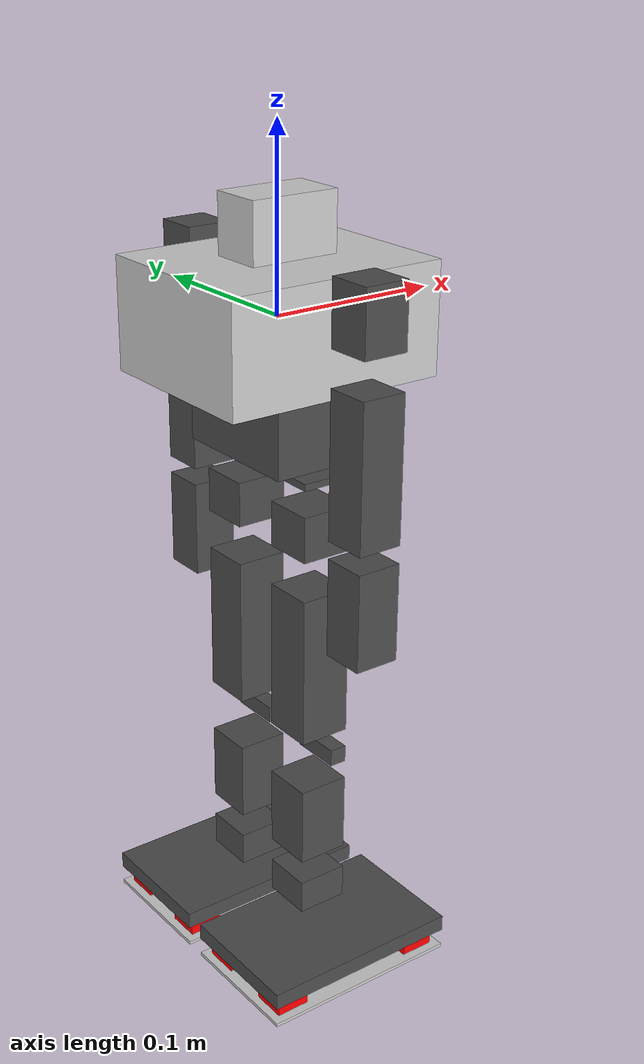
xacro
<?xml version="1.0"?>
<robot name="khr-3hv" xmlns:xacro="http://ros.org/wiki/xacro">

	<xacro:include filename="$(find sotuken2017)/urdf/khr_body/khr-body normal.xacro"/>
	<xacro:include filename="$(find sotuken2017)/urdf/khr_head/khr-head normal.xacro"/>
	<xacro:include filename="$(find sotuken2017)/urdf/khr_arm/khr-arm normal.xacro"/>
	<xacro:include filename="$(find sotuken2017)/urdf/khr_leg/khr-leg normal.xacro"/>

	<!-- head -->
	<xacro:make_head parent="base_link"/>

	<!-- base link (body)-->
	<xacro:make_body/>

	<!-- left arm -->
	<xacro:make_arm parent="base_link" LRarm="L" ref="1" arm_bool="true"/>

	<!-- right arm -->
	<xacro:make_arm parent="base_link" LRarm="R" ref="-1" arm_bool="false"/>

	<!-- left leg -->
	<xacro:make_leg parent="body_2" LRleg="L" ref="1" leg_bool="true"/>

	<!-- right leg -->
	<xacro:make_leg parent="body_2" LRleg="R" ref="-1" leg_bool="false"/>

</robot>

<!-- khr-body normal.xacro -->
<robot xmlns:xacro="http://ros.org/wiki/xacro">

<xacro:include filename="$(find sotuken2017)/urdf/common.xacro"/>
<xacro:include filename="$(find sotuken2017)/urdf/urdf_gazebo.xacro"/>

  <property name="ef" value="1.37293"/>
  <property name="vel" value="7.5"/>

  <property name="body_x" value="0.129"/>
  <property name="body_y" value="0.105"/>
  <property name="body_z" value="0.062"/>
  <property name="body_mass" value="0.3"/>

  <property name="body_2_x" value="0.057"/>
  <property name="body_2_y" value="0.08"/>
  <property name="body_2_z" value="0.041"/>
  <property name="body_2_mass" value="0.2"/>

  <xacro:macro name="default_origin">
	  <origin xyz="0 0 0" rpy="0 0 0"/>
  </xacro:macro>

  <xacro:macro name="make_body">
    <link name="base_link">
      <visual>
		<xacro:default_origin/>
        <geometry>
          <box size="${body_x} ${body_y} ${body_z}"/>
        </geometry>
        <xacro:gray/>
      </visual>

      <collision>
		<xacro:default_origin/>
        <geometry>
          <box size="${body_x} ${body_y} ${body_z}"/>
        </geometry>
      </collision>

      <inertial>
		<xacro:default_origin/>
        <xacro:box_inertial m="${body_mass}" d="${body_x}" w="${body_y}" h="${body_z}"/>
      </inertial>

    </link>

    <joint name="base_link_to_body_2" type="revolute">
      <parent link="base_link"/>
      <child link="body_2"/>
      <origin xyz="0 0 -${body_z / 2 + body_2_z / 2 + 0.001}" rpy="0 0 0"/>
      <axis xyz="0 0 1"/>
	  <dynamics damping="0.5"/>
      <limit lower="-${M_PI / 4}" upper="${M_PI / 4}" effort="${ef}" velocity="${vel}"/>
    </joint>

    <link name="body_2">
      <visual>
		<xacro:default_origin/>
        <geometry>
          <box size="${body_2_x} ${body_2_y} ${body_2_z}"/>
        </geometry>
        <xacro:black/>
      </visual>

	  <collision>
		<xacro:default_origin/>
        <geometry>
          <box size="${body_2_x} ${body_2_y} ${body_2_z}"/>
        </geometry>
      </collision>

      <inertial>
		<xacro:default_origin/>
        <xacro:box_inertial m="${body_2_mass}" d="${body_2_x}" w="${body_2_y}" h="${body_2_z}"/>
      </inertial>
    </link>

	<xacro:gazebo_link_gray ref="base_link"/>
	<xacro:gazebo_link_black ref="body_2"/>
  </xacro:macro>

</robot>

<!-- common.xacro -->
<robot xmlns:xacro="http://ros.org/wiki/xacro">
  <property name="M_PI" value="3.14159274"/>

  <!-- common color -->
  <xacro:macro name="set_color">
	  <material name="default">
   		<color rgba="0.8 0.8 0.8 1.0"/>
  	  </material>
  </xacro:macro>

  <xacro:macro name="red">
	  <material name="red">
   		<color rgba="1.0 0.0 0.0 1.0"/>
  	  </material>
  </xacro:macro>

  <xacro:macro name="black">
	  <material name="black">
   		<color rgba="0.3 0.3 0.3 1.0"/>
  	  </material>
  </xacro:macro>

  <xacro:macro name="gray">
	  <material name="gray">
   		<color rgba="0.8 0.8 0.8 1.0"/>
  	  </material>
  </xacro:macro>

  <!-- calculate box inertia -->
  <xacro:macro name="box_inertial" params="m d w h">
    <mass value="${m}"/>
    <inertia ixx="${(m * (h * h + d * d)) / 12}"   ixy="0" ixz="0"
             iyy="${(m * (w * w + d * d)) / 12}"   iyz="0"
             izz="${(m * (w * w + h * h)) / 12}" />
  </xacro:macro>

</robot>

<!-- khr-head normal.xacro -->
<robot xmlns:xacro="http://ros.org/wiki/xacro">

<xacro:include filename="$(find sotuken2017)/urdf/common.xacro"/>
<xacro:include filename="$(find sotuken2017)/urdf/urdf_gazebo.xacro"/>
<xacro:include filename="$(find sotuken2017)/urdf/khr_body/khr-body normal.xacro"/>

  <property name="ef" value="1.37293"/>
  <property name="vel" value="7.5"/>

  <property name="head_x" value="0.052"/>
  <property name="head_y" value="0.031"/>
  <property name="head_z" value="0.033"/>
  <property name="head_mass" value="0.1"/>

   <xacro:macro name="make_head" params="parent">
     <joint name="${parent}_to_head" type="revolute">
       <parent link="${parent}"/>
       <child link="head"/>
       <origin xyz="0 0 ${body_z / 2 + 0.0005}" rpy="0 0 0"/>
       <axis xyz="0 0 1"/>
	   <dynamics damping="0.5"/>
       <limit lower="-${M_PI / 2}" upper="${M_PI / 2}" effort="${ef}" velocity="${vel}"/>
     </joint>

     <link name="head">
		<visual>
        	<origin xyz="0 0 ${head_z /2 + 0.0005}" rpy="0 0 0"/>
       		<geometry>
        		<box size="${head_x} ${head_y} ${head_z}"/>
       		</geometry>
       		<xacro:gray/>
       	</visual>

       	<collision>
			<origin xyz="0 0 ${head_z /2 + 0.0005}" rpy="0 0 0"/>
			<geometry>
				<box size="${head_x} ${head_y} ${head_z}"/>
			</geometry>
       	</collision>

	   	<inertial>
		    <origin xyz="0 0 ${head_z /2 + 0.0005}" rpy="0 0 0"/>
		    <xacro:box_inertial m="${head_mass}" d="${head_x}" w="${head_y}" h="${head_z}"/>
	   	</inertial>
     </link>

	 <xacro:gazebo_link_gray ref="head"/>
   </xacro:macro>

</robot>

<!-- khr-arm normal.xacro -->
<robot xmlns:xacro="http://ros.org/wiki/xacro">

<xacro:include filename="$(find sotuken2017)/urdf/common.xacro"/>
<xacro:include filename="$(find sotuken2017)/urdf/urdf_gazebo.xacro"/>

  <property name="ef" value="1.37293"/>
  <property name="vel" value="7.5"/>

  <property name="arm_xy" value="0.026"/>

  <property name="shoulder_z" value="0.036"/>
  <property name="shoulder_mass" value="0.0625"/>

  <property name="upper_arm_z" value="0.082"/>
  <property name="upper_arm_mass" value="0.0625"/>

  <property name="lower_arm_z" value="0.056"/>
  <property name="lower_arm_mass" value="0.025"/>

 <xacro:macro name="make_arm" params="parent LRarm ref arm_bool">
     <joint name="${parent}_to_${LRarm}shoulder" type="revolute">
        <parent link="${parent}"/>
        <child link="${LRarm}shoulder"/>
        <origin xyz="0 ${ref * 0.0525} 0.018" rpy="0 0 0"/>
        <axis xyz="0 1 0"/>
		<dynamics damping="0.5"/>
        <limit lower="-${M_PI}" upper="${M_PI / 3}" effort="${ef}" velocity="${vel}"/>
     </joint>

     <link name="${LRarm}shoulder">
        <visual>
            <origin xyz="0 ${ref * 0.023} 0" rpy="0 0 0"/>
            <geometry>
                <box size="${arm_xy} ${arm_xy} ${shoulder_z}"/>
            </geometry>
            <xacro:black/>
        </visual>

        <collision>
            <origin xyz="0 ${ref * 0.023} 0" rpy="0 0 0"/>
            <geometry>
                <box size="${arm_xy} ${arm_xy} ${shoulder_z}"/>
            </geometry>
        </collision>

        <inertial>
           <origin xyz="0 ${ref * 0.023} 0" rpy="0 0 0"/>
           <xacro:box_inertial m="${shoulder_mass}" d="${arm_xy}" w="${arm_xy}" h="${shoulder_z}"/>
        </inertial>
     </link>

     <joint name="${LRarm}shoulder_to_${LRarm}upper_arm" type="revolute">
        <parent link="${LRarm}shoulder"/>
        <child link="${LRarm}upper_arm"/>
        <origin xyz="0 ${ref * 0.023} 0" rpy="0 0 0"/>
        <axis xyz="1 0 0"/>
		<dynamics damping="0.5"/>
        <xacro:if value="${arm_bool}">
            <limit lower="-0.0" upper="${M_PI / 2}" effort="${ef}" velocity="${vel}"/>
        </xacro:if>
		<xacro:unless value="${arm_bool}">
			<limit lower="-${M_PI / 2}" upper="0.0" effort="${ef}" velocity="${vel}"/>
		</xacro:unless>
     </joint>

     <link name="${LRarm}upper_arm">
        <visual>
            <origin xyz="0 0 -0.079" rpy="0 0 0"/>
            <geometry>
                <box size="${arm_xy} ${arm_xy} ${upper_arm_z}"/>
            </geometry>
            <xacro:black/>
        </visual>

        <collision>
            <origin xyz="0 0 -0.079" rpy="0 0 0"/>
            <geometry>
                <box size="${arm_xy} ${arm_xy} ${upper_arm_z}"/>
            </geometry>
        </collision>

        <inertial>
            <origin xyz="0 0 -0.079" rpy="0 0 0"/>
            <xacro:box_inertial m="${upper_arm_mass}" d="${arm_xy}" w="${arm_xy}" h="${upper_arm_z}"/>
        </inertial>
    </link>

    <joint name="${LRarm}upper_arm_to_${LRarm}lower_arm" type="revolute">
        <parent link="${LRarm}upper_arm"/>
        <child link="${LRarm}lower_arm"/>
        <origin xyz="${arm_xy / 2} 0 -0.125" rpy="0 0 0"/>
        <axis xyz="0 1 0"/>
		<dynamics damping="0.5"/>
        <limit lower="-${M_PI * 5 / 6}" upper="0.0" effort="${ef}" velocity="${vel}"/>
    </joint>

    <link name="${LRarm}lower_arm">
        <visual>
            <origin xyz="-${arm_xy / 2} 0 -0.033" rpy="0 0 0"/>
            <geometry>
                <box size="${arm_xy} ${arm_xy} ${lower_arm_z}"/>
            </geometry>
            <xacro:black/>
        </visual>

        <collision>
            <origin xyz="-${arm_xy / 2} 0 -0.033" rpy="0 0 0"/>
            <geometry>
                <box size="${arm_xy} ${arm_xy} ${lower_arm_z}"/>
            </geometry>
        </collision>

        <inertial>
            <origin xyz="-${arm_xy / 2} 0 -0.033" rpy="0 0 0"/>
            <xacro:box_inertial m="${lower_arm_mass}" d="${arm_xy}" w="${arm_xy}" h="${lower_arm_z}"/>
        </inertial>
    </link>

	<xacro:gazebo_link_black ref="${LRarm}shoulder"/>
	<xacro:gazebo_link_black ref="${LRarm}upper_arm"/>
	<xacro:gazebo_link_black ref="${LRarm}lower_arm"/>
  </xacro:macro>
</robot>

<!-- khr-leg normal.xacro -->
<robot xmlns:xacro="http://ros.org/wiki/xacro">

<xacro:include filename="$(find sotuken2017)/urdf/common.xacro"/>
<xacro:include filename="$(find sotuken2017)/urdf/urdf_gazebo.xacro"/>
<xacro:include filename="$(find sotuken2017)/urdf/sensor/khr-force_sensor normal.xacro"/>

	<property name="ef" value="1.37293"/>
    <property name="vel" value="7.5"/>

	<property name="leg_xy" value="0.03"/>

	<property name="hips_z" value="0.0039"/>
	<property name="hips_mass" value="0.048"/>

	<property name="thigh_z" value="0.026"/>
	<property name="thigh_mass" value="0.068"/>

	<property name="knee_z" value="0.088"/>
	<property name="knee_mass" value="0.118"/>

	<property name="shin_z" value="0.047"/>
	<property name="shin_mass" value="0.068"/>

	<property name="hizakozo_xz" value="0.01"/>
	<property name="hizakozo_mass" value="0.01"/>

	<property name="ankle_z" value="0.02"/>
	<property name="ankle_mass" value="0.058"/>

	<property name="foot_x" value="0.122"/>
	<property name="foot_y" value="0.078"/>
	<property name="foot_z" value="0.01"/>
	<property name="foot_mass" value="0.03"/>

	<property name="foot2_x" value="0.122"/>
	<property name="foot2_y" value="0.078"/>
	<property name="foot2_z" value="0.002"/>
	<property name="foot2_mass" value="0.05"/>

	<xacro:macro name="make_leg" params="parent LRleg ref leg_bool">
 		<joint name="${parent}_to_${LRleg}hips" type="revolute">
  				<parent link="${parent}"/>
  				<child link="${LRleg}hips"/>
 				<origin xyz="0 ${ref * 0.03} -0.0255" rpy="0 0 0"/>
  				<axis xyz="0 0 1"/>
				<dynamics damping="0.5"/>
				<xacro:if value="${leg_bool}">
        			    <limit lower="-${M_PI / 6}" upper="${M_PI / 4}" effort="${ef}" velocity="${vel}"/>
		        </xacro:if>
				<xacro:unless value="${leg_bool}">
						<limit lower="-${M_PI / 4}" upper="${M_PI / 6}" effort="${ef}" velocity="${vel}"/>
				</xacro:unless>
		</joint>

 		<link name="${LRleg}hips">
 				<visual>
   						<origin xyz="0 0 0" rpy="0 0 0"/>
   						<geometry>
    							<box size="${leg_xy} ${leg_xy} ${hips_z}"/>
  						</geometry>
  						<xacro:black/>
  				</visual>

  				<collision>
  						<origin xyz="0 0 0" rpy="0 0 0"/>
   						<geometry>
    							<box size="${leg_xy} ${leg_xy} ${hips_z}"/>
   						</geometry>
  				</collision>

  				<inertial>
   						<origin xyz="0 0 0" rpy="0 0 0"/>
						<xacro:box_inertial m="${hips_mass}" d="${leg_xy}" w="${leg_xy}" h="${hips_z}"/>
				</inertial>
 		</link>

		<joint name="${LRleg}hips_to_${LRleg}thigh" type="revolute">
				<parent link="${LRleg}hips"/>
				<child link="${LRleg}thigh"/>
				<origin xyz="0 0 -0.030" rpy="0 0 0"/>
				<axis xyz="1 0 0"/>
				<dynamics damping="0.5"/>
				<xacro:if value="${leg_bool}">
        			    <limit lower="-${M_PI / 6}" upper="${M_PI / 4}" effort="${ef}" velocity="${vel}"/>
		        </xacro:if>
				<xacro:unless value="${leg_bool}">
						<limit lower="-${M_PI / 4}" upper="${M_PI / 6}" effort="${ef}" velocity="${vel}"/>
				</xacro:unless>
		</joint>

		<link name="${LRleg}thigh">
				<visual>
						<origin xyz="0 0 0" rpy="0 0 0"/>
						<geometry>
								<box size="${leg_xy} ${leg_xy} ${thigh_z}"/>
						</geometry>
						<xacro:black/>
				</visual>

				<collision>
						<origin xyz="0 0 0" rpy="0 0 0"/>
						<geometry>
								<box size="${leg_xy} ${leg_xy} ${thigh_z}"/>
						</geometry>
				</collision>

				<inertial>
						<origin xyz="0 0 0" rpy="0 0 0"/>
						<xacro:box_inertial m="${thigh_mass}" d="${leg_xy}" w="${leg_xy}" h="${thigh_z}"/>
				</inertial>
		</link>

		<joint name="${LRleg}thigh_to_${LRleg}knee" type="revolute">
				<parent link="${LRleg}thigh"/>
				<child link="${LRleg}knee"/>
				<origin xyz="0 0 -0.046" rpy="0 0 0"/>
				<axis xyz="0 1 0"/>
				<dynamics damping="0.5"/>
				<limit lower="-${M_PI * 2 / 3}" upper="${M_PI / 4}" effort="${ef}" velocity="${vel}"/>
		</joint>

		<link name="${LRleg}knee">
				<visual>
						<origin xyz="0 0 -0.034" rpy="0 0 0"/>
						<geometry>
								<box size="${leg_xy} ${leg_xy} ${knee_z}"/>
						</geometry>
						<xacro:black/>
				</visual>

				<collision>
						<origin xyz="0 0 -0.034" rpy="0 0 0"/>
						<geometry>
								<box size="${leg_xy} ${leg_xy} ${knee_z}"/>
						</geometry>
				</collision>

				<inertial>
						<origin xyz="0 0 -0.034" rpy="0 0 0"/>
						<xacro:box_inertial m="${knee_mass}" d="${leg_xy}" w="${leg_xy}" h="${knee_z}"/>
				</inertial>
		</link>

		<joint name="${LRleg}knee_to_${LRleg}hizakozo" type="revolute">
				<parent link="${LRleg}knee"/>
				<child link="${LRleg}hizakozo"/>
				<origin xyz="0 0 -0.078" rpy="0 0 0"/>
				<axis xyz="0 1 0"/>
				<dynamics damping="0.5"/>
				<limit lower="-0.0" upper="${M_PI / 2}" effort="${ef}" velocity="${vel}"/>
		</joint>

		<link name="${LRleg}hizakozo">
				<visual>
						<origin xyz="${hizakozo_xz} 0 -0.016" rpy="0 0 0"/>
						<geometry>
								<box size="${hizakozo_xz} ${leg_xy} ${hizakozo_xz}"/>
						</geometry>
						<xacro:black/>
				</visual>

				<collision>
						<origin xyz="${hizakozo_xz} 0 -0.016" rpy="0 0 0"/>
						<geometry>
								<box size="${hizakozo_xz} ${leg_xy} ${hizakozo_xz}"/>
						</geometry>
				</collision>

				<inertial>
						<origin xyz="${hizakozo_xz} 0 -0.016" rpy="0 0 0"/>
						<xacro:box_inertial m="${hizakozo_mass}" d="${hizakozo_xz}" w="${leg_xy}" h="${hizakozo_xz}"/>
				</inertial>
		</link>

		<joint name="${LRleg}hizakozo_to_${LRleg}shin" type="revolute">
				<parent link="${LRleg}hizakozo"/>
				<child link="${LRleg}shin"/>
				<origin xyz="0 0 -0.032" rpy="0 0 0"/>
				<axis xyz="0 1 0"/>
				<dynamics damping="0.5"/>
				<limit lower="-0.0" upper="${M_PI / 2}" effort="${ef}" velocity="${vel}"/>
		</joint>

		<link name="${LRleg}shin">
				<visual>
						<origin xyz="0 0 -0.0235" rpy="0 0 0"/>
						<geometry>
								<box size="${leg_xy} ${leg_xy} ${shin_z}"/>
						</geometry>
						<xacro:black/>
				</visual>

				<collision>
						<origin xyz="0 0 -0.0235" rpy="0 0 0"/>
						<geometry>
								<box size="${leg_xy} ${leg_xy} ${shin_z}"/>
						</geometry>
				</collision>

				<inertial>
						<origin xyz="0 0 -0.0235" rpy="0 0 0"/>
						<xacro:box_inertial m="${shin_mass}" d="${leg_xy}" w="${leg_xy}" h="${shin_z}"/>
				</inertial>
		</link>

		<joint name="${LRleg}shin_to_${LRleg}ankle" type="revolute">
				<parent link="${LRleg}shin"/>
				<child link="${LRleg}ankle"/>
				<origin xyz="0 0 -0.0319" rpy="0 0 0"/>
				<axis xyz="0 1 0"/>
				<dynamics damping="0.5"/>
				<limit lower="-${M_PI / 2}" upper="${M_PI / 3}" effort="${ef}" velocity="${vel}"/>
		</joint>

		<link name="${LRleg}ankle">
				<visual>
						<origin xyz="0 0 -0.04" rpy="0 0 0"/>
						<geometry>
								<box size="${leg_xy} ${leg_xy} ${ankle_z}"/>
						</geometry>
						<xacro:black/>
				</visual>

				<collision>
						<origin xyz="0 0 -0.04" rpy="0 0 0"/>
						<geometry>
								<box size="${leg_xy} ${leg_xy} ${ankle_z}"/>
						</geometry>
				</collision>

				<inertial>
						<origin xyz="0 0 -0.04" rpy="0 0 0"/>
						<xacro:box_inertial m="${ankle_mass}" d="${leg_xy}" w="${leg_xy}" h="${ankle_z}"/>
				</inertial>
		</link>

		<joint name="${LRleg}ankle_to_${LRleg}foot" type="revolute">
				<parent link="${LRleg}ankle"/>
				<child link="${LRleg}foot"/>
				<origin xyz="0 0 -0.037" rpy="0 0 0"/>
				<axis xyz="1 0 0"/>
				<dynamics damping="0.5"/>
				<limit lower="-${M_PI / 4}" upper="${M_PI / 4}" effort="${ef}" velocity="${vel}"/>
		</joint>

		<link name="${LRleg}foot">
				<visual>
						<origin xyz="0 ${ref * leg_xy / 2} -0.0312" rpy="0 0 0"/>
						<geometry>
								<box size="${foot_x} ${foot_y} ${foot_z}"/>
						</geometry>
						<xacro:black/>
				</visual>

				<collision>
						<origin xyz="0 ${ref * leg_xy / 2} -0.0312" rpy="0 0 0"/>
						<geometry>
								<box size="${foot_x} ${foot_y} ${foot_z}"/>
						</geometry>
				</collision>

				<inertial>
						<origin xyz="0 ${ref * leg_xy / 2} -0.0312" rpy="0 0 0"/>
						<xacro:box_inertial m="${foot_mass}" d="${foot_x}" w="${foot_y}" h="${foot_z}"/>
				</inertial>
		</link>

		<!-- set force sensor -->
		<xacro:make_fsensor parent="${LRleg}foot" LR="${LRleg}" num="1">
				<origin xyz="${foot_x / 2 - 0.015}  ${(ref * leg_xy / 2) + (foot_y / 2 - 0.015)} -${0.0315 + foot_z / 2 + box_z / 2}" rpy="0 0 0" />
		</xacro:make_fsensor>

		<xacro:make_fsensor parent="${LRleg}foot" LR="${LRleg}" num="2">
				<origin xyz="-${foot_x / 2 -0.015}  ${(ref * leg_xy / 2) + (foot_y / 2 - 0.015)} -${0.0315 + foot_z / 2 + box_z / 2}" rpy="0 0 0" />
		</xacro:make_fsensor>

		<xacro:make_fsensor parent="${LRleg}foot" LR="${LRleg}" num="3">
				<origin xyz="${foot_x / 2 -0.015}  ${(ref * leg_xy / 2) - (foot_y / 2 - 0.015)} -${0.0315 + foot_z / 2 + box_z / 2}" rpy="0 0 0" />
		</xacro:make_fsensor>

		<xacro:make_fsensor parent="${LRleg}foot" LR="${LRleg}" num="4">
				<origin xyz="-${foot_x / 2 -0.015}  ${(ref * leg_xy / 2) - (foot_y / 2 - 0.015)} -${0.0315 + foot_z / 2 + box_z / 2}" rpy="0 0 0" />
		</xacro:make_fsensor>

		<joint name="${LRleg}foot_to_${LRleg}foot2" type="revolute">
				<parent link="${LRleg}foot"/>
				<child link="${LRleg}foot2"/>
				<origin xyz="0 ${ref * leg_xy / 2} -${0.0315 + foot_z / 2 + foot_z / 10 + box_z}" rpy="0 0 0"/>
				<axis xyz="0 0 1"/>
				<limit lower="-0" upper="0" effort="0" velocity="0"/>
		</joint>

		<link name="${LRleg}foot2">
				<visual>
						<origin xyz="0 0 0" rpy="0 0 0"/>
						<geometry>
								<box size="${foot2_x} ${foot2_y} ${foot2_z}"/>
						</geometry>
						<xacro:gray/>
				</visual>

				<collision>
						<origin xyz="0 0 0" rpy="0 0 0"/>
						<geometry>
								<box size="${foot2_x} ${foot2_y} ${foot2_z}"/>
						</geometry>
				</collision>

				<inertial>
						<origin xyz="0 0 0" rpy="0 0 0"/>
						<xacro:box_inertial m="${foot2_mass}" d="${foot2_x}" w="${foot2_y}" h="${foot2_z}"/>
				</inertial>
		</link>

		<xacro:gazebo_link_black ref="${LRleg}hips"/>
		<xacro:gazebo_link_black ref="${LRleg}thigh"/>
		<xacro:gazebo_link_black ref="${LRleg}knee"/>
		<xacro:gazebo_link_black ref="${LRleg}hizakozo"/>
		<xacro:gazebo_link_black ref="${LRleg}shin"/>
		<xacro:gazebo_link_black ref="${LRleg}ankle"/>
		<xacro:gazebo_link_black ref="${LRleg}foot"/>
		<xacro:gazebo_link_gray ref="${LRleg}foot2"/>
	</xacro:macro>
</robot>

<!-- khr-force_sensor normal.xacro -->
<robot xmlns:xacro="http://ros.org/wiki/xacro">

<xacro:include filename="$(find sotuken2017)/urdf/urdf_gazebo.xacro"/>

	<property name="box_xy" value="0.02"/>
	<property name="box_z" value="0.01"/>
	<property name="box_mass" value="0.005"/>

	<xacro:macro name="make_fsensor" params="parent LR num *joint_origin">
 		<joint name="${LR}fsensor${num}_joint" type="fixed">
   			<insert_block name="joint_origin"/>
   			<parent link="${parent}" />
   			<child link="${LR}fsensor${num}" />
 		</joint>

		<link name="${LR}fsensor${num}">
			<visual>
				<origin xyz="0 0 0" rpy="0 0 0"/>
				<geometry>
					<box size="${box_xy} ${box_xy} ${box_z}"/>
				</geometry>
				<xacro:red/>
			</visual>

			<collision>
				<origin xyz="0 0 0" rpy="0 0 0"/>
				<geometry>
					<box size="${box_xy} ${box_xy} ${box_z}"/>
				</geometry>
			</collision>

			<inertial>
				<origin xyz="0 0 0" rpy="0 0 0"/>
				<xacro:box_inertial m="${box_mass}" d="${box_xy}" w="${box_xy}" h="${box_z}"/>
			</inertial>
 		</link>

 		<sensor name="${LR}fsensor${num}_sensor" update_rate="20">
   			<insert_block name="joint_origin"/>
   			<parent link="${parent}" />
 		</sensor>

		<xacro:gazebo_link_red ref="${LR}fsensor${num}"/>
	</xacro:macro>

</robot>
